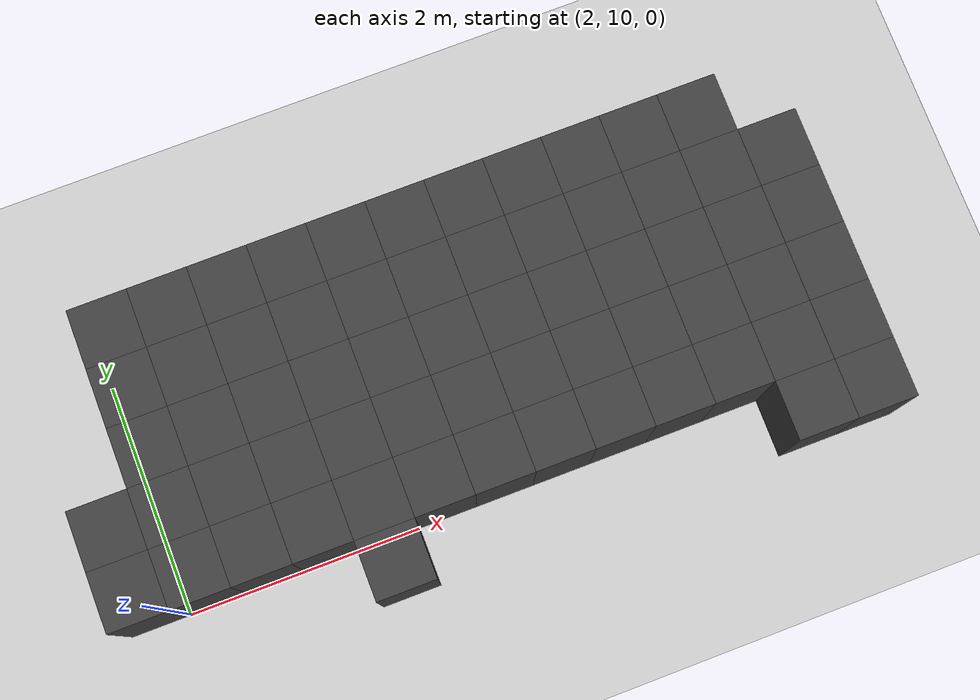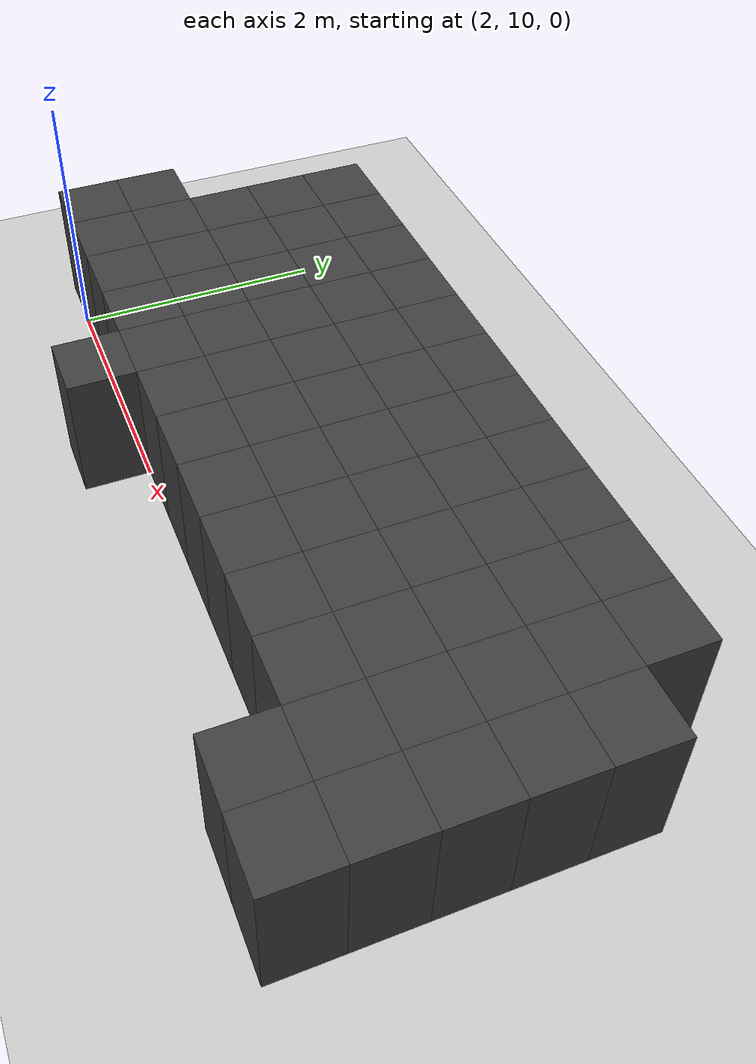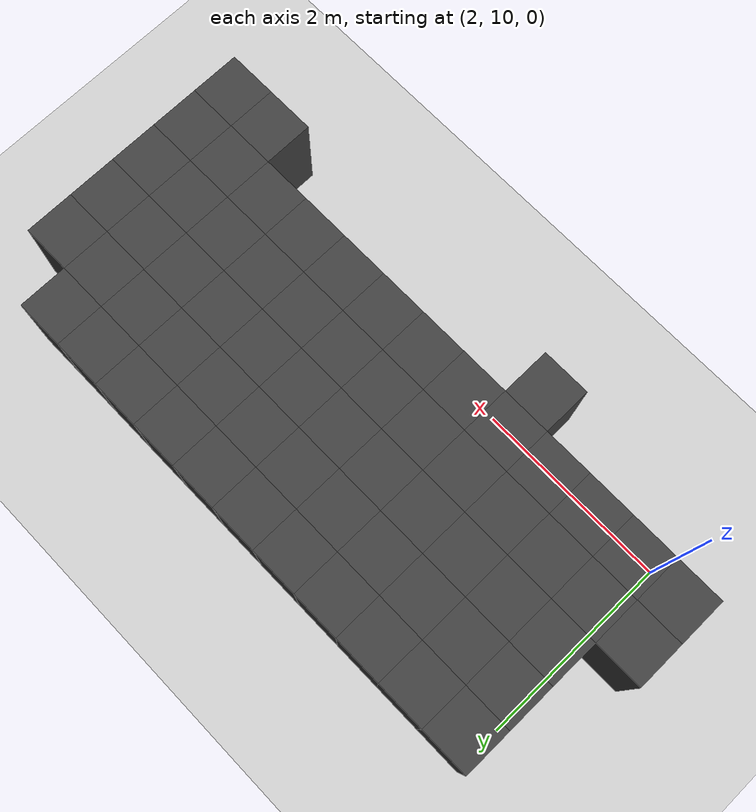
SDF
<sdf version="1.7">
 <world name="map_14735">
  <model name="ground_plane">
   <static>true</static>
   <link name="link">
    <collision name="collision">
     <geometry><plane><normal>0 0 1</normal><size>200 200</size></plane></geometry>
    </collision>
    <visual name="visual">
     <geometry><plane><normal>0 0 1</normal><size>200 200</size></plane></geometry>
     <material><ambient>0.8 0.8 0.8 1</ambient><diffuse>0.8 0.8 0.8 1</diffuse></material>
    </visual>
   </link>
  </model>
  <model name="maze_environment">
   <static>true</static>
   <link name="wall_29">
    <pose>2.250 12.250 0.500 0 0 0</pose>
    <collision name="col"><geometry><box><size>0.5 0.5 1.0</size></box></geometry></collision>
    <visual name="vis">
     <geometry><box><size>0.5 0.5 1.0</size></box></geometry>
     <material><ambient>0.15 0.15 0.15 1</ambient><diffuse>0.25 0.25 0.25 1</diffuse></material>
    </visual>
   </link>
   <link name="wall_30">
    <pose>2.750 12.250 0.500 0 0 0</pose>
    <collision name="col"><geometry><box><size>0.5 0.5 1.0</size></box></geometry></collision>
    <visual name="vis">
     <geometry><box><size>0.5 0.5 1.0</size></box></geometry>
     <material><ambient>0.15 0.15 0.15 1</ambient><diffuse>0.25 0.25 0.25 1</diffuse></material>
    </visual>
   </link>
   <link name="wall_31">
    <pose>3.250 12.250 0.500 0 0 0</pose>
    <collision name="col"><geometry><box><size>0.5 0.5 1.0</size></box></geometry></collision>
    <visual name="vis">
     <geometry><box><size>0.5 0.5 1.0</size></box></geometry>
     <material><ambient>0.15 0.15 0.15 1</ambient><diffuse>0.25 0.25 0.25 1</diffuse></material>
    </visual>
   </link>
   <link name="wall_32">
    <pose>3.750 12.250 0.500 0 0 0</pose>
    <collision name="col"><geometry><box><size>0.5 0.5 1.0</size></box></geometry></collision>
    <visual name="vis">
     <geometry><box><size>0.5 0.5 1.0</size></box></geometry>
     <material><ambient>0.15 0.15 0.15 1</ambient><diffuse>0.25 0.25 0.25 1</diffuse></material>
    </visual>
   </link>
   <link name="wall_33">
    <pose>4.250 12.250 0.500 0 0 0</pose>
    <collision name="col"><geometry><box><size>0.5 0.5 1.0</size></box></geometry></collision>
    <visual name="vis">
     <geometry><box><size>0.5 0.5 1.0</size></box></geometry>
     <material><ambient>0.15 0.15 0.15 1</ambient><diffuse>0.25 0.25 0.25 1</diffuse></material>
    </visual>
   </link>
   <link name="wall_34">
    <pose>4.750 12.250 0.500 0 0 0</pose>
    <collision name="col"><geometry><box><size>0.5 0.5 1.0</size></box></geometry></collision>
    <visual name="vis">
     <geometry><box><size>0.5 0.5 1.0</size></box></geometry>
     <material><ambient>0.15 0.15 0.15 1</ambient><diffuse>0.25 0.25 0.25 1</diffuse></material>
    </visual>
   </link>
   <link name="wall_35">
    <pose>5.250 12.250 0.500 0 0 0</pose>
    <collision name="col"><geometry><box><size>0.5 0.5 1.0</size></box></geometry></collision>
    <visual name="vis">
     <geometry><box><size>0.5 0.5 1.0</size></box></geometry>
     <material><ambient>0.15 0.15 0.15 1</ambient><diffuse>0.25 0.25 0.25 1</diffuse></material>
    </visual>
   </link>
   <link name="wall_36">
    <pose>5.750 12.250 0.500 0 0 0</pose>
    <collision name="col"><geometry><box><size>0.5 0.5 1.0</size></box></geometry></collision>
    <visual name="vis">
     <geometry><box><size>0.5 0.5 1.0</size></box></geometry>
     <material><ambient>0.15 0.15 0.15 1</ambient><diffuse>0.25 0.25 0.25 1</diffuse></material>
    </visual>
   </link>
   <link name="wall_37">
    <pose>6.250 12.250 0.500 0 0 0</pose>
    <collision name="col"><geometry><box><size>0.5 0.5 1.0</size></box></geometry></collision>
    <visual name="vis">
     <geometry><box><size>0.5 0.5 1.0</size></box></geometry>
     <material><ambient>0.15 0.15 0.15 1</ambient><diffuse>0.25 0.25 0.25 1</diffuse></material>
    </visual>
   </link>
   <link name="wall_38">
    <pose>6.750 12.250 0.500 0 0 0</pose>
    <collision name="col"><geometry><box><size>0.5 0.5 1.0</size></box></geometry></collision>
    <visual name="vis">
     <geometry><box><size>0.5 0.5 1.0</size></box></geometry>
     <material><ambient>0.15 0.15 0.15 1</ambient><diffuse>0.25 0.25 0.25 1</diffuse></material>
    </visual>
   </link>
   <link name="wall_39">
    <pose>7.250 12.250 0.500 0 0 0</pose>
    <collision name="col"><geometry><box><size>0.5 0.5 1.0</size></box></geometry></collision>
    <visual name="vis">
     <geometry><box><size>0.5 0.5 1.0</size></box></geometry>
     <material><ambient>0.15 0.15 0.15 1</ambient><diffuse>0.25 0.25 0.25 1</diffuse></material>
    </visual>
   </link>
   <link name="wall_71">
    <pose>2.250 11.750 0.500 0 0 0</pose>
    <collision name="col"><geometry><box><size>0.5 0.5 1.0</size></box></geometry></collision>
    <visual name="vis">
     <geometry><box><size>0.5 0.5 1.0</size></box></geometry>
     <material><ambient>0.15 0.15 0.15 1</ambient><diffuse>0.25 0.25 0.25 1</diffuse></material>
    </visual>
   </link>
   <link name="wall_72">
    <pose>2.750 11.750 0.500 0 0 0</pose>
    <collision name="col"><geometry><box><size>0.5 0.5 1.0</size></box></geometry></collision>
    <visual name="vis">
     <geometry><box><size>0.5 0.5 1.0</size></box></geometry>
     <material><ambient>0.15 0.15 0.15 1</ambient><diffuse>0.25 0.25 0.25 1</diffuse></material>
    </visual>
   </link>
   <link name="wall_73">
    <pose>3.250 11.750 0.500 0 0 0</pose>
    <collision name="col"><geometry><box><size>0.5 0.5 1.0</size></box></geometry></collision>
    <visual name="vis">
     <geometry><box><size>0.5 0.5 1.0</size></box></geometry>
     <material><ambient>0.15 0.15 0.15 1</ambient><diffuse>0.25 0.25 0.25 1</diffuse></material>
    </visual>
   </link>
   <link name="wall_74">
    <pose>3.750 11.750 0.500 0 0 0</pose>
    <collision name="col"><geometry><box><size>0.5 0.5 1.0</size></box></geometry></collision>
    <visual name="vis">
     <geometry><box><size>0.5 0.5 1.0</size></box></geometry>
     <material><ambient>0.15 0.15 0.15 1</ambient><diffuse>0.25 0.25 0.25 1</diffuse></material>
    </visual>
   </link>
   <link name="wall_75">
    <pose>4.250 11.750 0.500 0 0 0</pose>
    <collision name="col"><geometry><box><size>0.5 0.5 1.0</size></box></geometry></collision>
    <visual name="vis">
     <geometry><box><size>0.5 0.5 1.0</size></box></geometry>
     <material><ambient>0.15 0.15 0.15 1</ambient><diffuse>0.25 0.25 0.25 1</diffuse></material>
    </visual>
   </link>
   <link name="wall_76">
    <pose>4.750 11.750 0.500 0 0 0</pose>
    <collision name="col"><geometry><box><size>0.5 0.5 1.0</size></box></geometry></collision>
    <visual name="vis">
     <geometry><box><size>0.5 0.5 1.0</size></box></geometry>
     <material><ambient>0.15 0.15 0.15 1</ambient><diffuse>0.25 0.25 0.25 1</diffuse></material>
    </visual>
   </link>
   <link name="wall_77">
    <pose>5.250 11.750 0.500 0 0 0</pose>
    <collision name="col"><geometry><box><size>0.5 0.5 1.0</size></box></geometry></collision>
    <visual name="vis">
     <geometry><box><size>0.5 0.5 1.0</size></box></geometry>
     <material><ambient>0.15 0.15 0.15 1</ambient><diffuse>0.25 0.25 0.25 1</diffuse></material>
    </visual>
   </link>
   <link name="wall_78">
    <pose>5.750 11.750 0.500 0 0 0</pose>
    <collision name="col"><geometry><box><size>0.5 0.5 1.0</size></box></geometry></collision>
    <visual name="vis">
     <geometry><box><size>0.5 0.5 1.0</size></box></geometry>
     <material><ambient>0.15 0.15 0.15 1</ambient><diffuse>0.25 0.25 0.25 1</diffuse></material>
    </visual>
   </link>
   <link name="wall_79">
    <pose>6.250 11.750 0.500 0 0 0</pose>
    <collision name="col"><geometry><box><size>0.5 0.5 1.0</size></box></geometry></collision>
    <visual name="vis">
     <geometry><box><size>0.5 0.5 1.0</size></box></geometry>
     <material><ambient>0.15 0.15 0.15 1</ambient><diffuse>0.25 0.25 0.25 1</diffuse></material>
    </visual>
   </link>
   <link name="wall_80">
    <pose>6.750 11.750 0.500 0 0 0</pose>
    <collision name="col"><geometry><box><size>0.5 0.5 1.0</size></box></geometry></collision>
    <visual name="vis">
     <geometry><box><size>0.5 0.5 1.0</size></box></geometry>
     <material><ambient>0.15 0.15 0.15 1</ambient><diffuse>0.25 0.25 0.25 1</diffuse></material>
    </visual>
   </link>
   <link name="wall_81">
    <pose>7.250 11.750 0.500 0 0 0</pose>
    <collision name="col"><geometry><box><size>0.5 0.5 1.0</size></box></geometry></collision>
    <visual name="vis">
     <geometry><box><size>0.5 0.5 1.0</size></box></geometry>
     <material><ambient>0.15 0.15 0.15 1</ambient><diffuse>0.25 0.25 0.25 1</diffuse></material>
    </visual>
   </link>
   <link name="wall_82">
    <pose>7.750 11.750 0.500 0 0 0</pose>
    <collision name="col"><geometry><box><size>0.5 0.5 1.0</size></box></geometry></collision>
    <visual name="vis">
     <geometry><box><size>0.5 0.5 1.0</size></box></geometry>
     <material><ambient>0.15 0.15 0.15 1</ambient><diffuse>0.25 0.25 0.25 1</diffuse></material>
    </visual>
   </link>
   <link name="wall_113">
    <pose>2.250 11.250 0.500 0 0 0</pose>
    <collision name="col"><geometry><box><size>0.5 0.5 1.0</size></box></geometry></collision>
    <visual name="vis">
     <geometry><box><size>0.5 0.5 1.0</size></box></geometry>
     <material><ambient>0.15 0.15 0.15 1</ambient><diffuse>0.25 0.25 0.25 1</diffuse></material>
    </visual>
   </link>
   <link name="wall_114">
    <pose>2.750 11.250 0.500 0 0 0</pose>
    <collision name="col"><geometry><box><size>0.5 0.5 1.0</size></box></geometry></collision>
    <visual name="vis">
     <geometry><box><size>0.5 0.5 1.0</size></box></geometry>
     <material><ambient>0.15 0.15 0.15 1</ambient><diffuse>0.25 0.25 0.25 1</diffuse></material>
    </visual>
   </link>
   <link name="wall_115">
    <pose>3.250 11.250 0.500 0 0 0</pose>
    <collision name="col"><geometry><box><size>0.5 0.5 1.0</size></box></geometry></collision>
    <visual name="vis">
     <geometry><box><size>0.5 0.5 1.0</size></box></geometry>
     <material><ambient>0.15 0.15 0.15 1</ambient><diffuse>0.25 0.25 0.25 1</diffuse></material>
    </visual>
   </link>
   <link name="wall_116">
    <pose>3.750 11.250 0.500 0 0 0</pose>
    <collision name="col"><geometry><box><size>0.5 0.5 1.0</size></box></geometry></collision>
    <visual name="vis">
     <geometry><box><size>0.5 0.5 1.0</size></box></geometry>
     <material><ambient>0.15 0.15 0.15 1</ambient><diffuse>0.25 0.25 0.25 1</diffuse></material>
    </visual>
   </link>
   <link name="wall_117">
    <pose>4.250 11.250 0.500 0 0 0</pose>
    <collision name="col"><geometry><box><size>0.5 0.5 1.0</size></box></geometry></collision>
    <visual name="vis">
     <geometry><box><size>0.5 0.5 1.0</size></box></geometry>
     <material><ambient>0.15 0.15 0.15 1</ambient><diffuse>0.25 0.25 0.25 1</diffuse></material>
    </visual>
   </link>
   <link name="wall_118">
    <pose>4.750 11.250 0.500 0 0 0</pose>
    <collision name="col"><geometry><box><size>0.5 0.5 1.0</size></box></geometry></collision>
    <visual name="vis">
     <geometry><box><size>0.5 0.5 1.0</size></box></geometry>
     <material><ambient>0.15 0.15 0.15 1</ambient><diffuse>0.25 0.25 0.25 1</diffuse></material>
    </visual>
   </link>
   <link name="wall_119">
    <pose>5.250 11.250 0.500 0 0 0</pose>
    <collision name="col"><geometry><box><size>0.5 0.5 1.0</size></box></geometry></collision>
    <visual name="vis">
     <geometry><box><size>0.5 0.5 1.0</size></box></geometry>
     <material><ambient>0.15 0.15 0.15 1</ambient><diffuse>0.25 0.25 0.25 1</diffuse></material>
    </visual>
   </link>
   <link name="wall_120">
    <pose>5.750 11.250 0.500 0 0 0</pose>
    <collision name="col"><geometry><box><size>0.5 0.5 1.0</size></box></geometry></collision>
    <visual name="vis">
     <geometry><box><size>0.5 0.5 1.0</size></box></geometry>
     <material><ambient>0.15 0.15 0.15 1</ambient><diffuse>0.25 0.25 0.25 1</diffuse></material>
    </visual>
   </link>
   <link name="wall_121">
    <pose>6.250 11.250 0.500 0 0 0</pose>
    <collision name="col"><geometry><box><size>0.5 0.5 1.0</size></box></geometry></collision>
    <visual name="vis">
     <geometry><box><size>0.5 0.5 1.0</size></box></geometry>
     <material><ambient>0.15 0.15 0.15 1</ambient><diffuse>0.25 0.25 0.25 1</diffuse></material>
    </visual>
   </link>
   <link name="wall_122">
    <pose>6.750 11.250 0.500 0 0 0</pose>
    <collision name="col"><geometry><box><size>0.5 0.5 1.0</size></box></geometry></collision>
    <visual name="vis">
     <geometry><box><size>0.5 0.5 1.0</size></box></geometry>
     <material><ambient>0.15 0.15 0.15 1</ambient><diffuse>0.25 0.25 0.25 1</diffuse></material>
    </visual>
   </link>
   <link name="wall_123">
    <pose>7.250 11.250 0.500 0 0 0</pose>
    <collision name="col"><geometry><box><size>0.5 0.5 1.0</size></box></geometry></collision>
    <visual name="vis">
     <geometry><box><size>0.5 0.5 1.0</size></box></geometry>
     <material><ambient>0.15 0.15 0.15 1</ambient><diffuse>0.25 0.25 0.25 1</diffuse></material>
    </visual>
   </link>
   <link name="wall_124">
    <pose>7.750 11.250 0.500 0 0 0</pose>
    <collision name="col"><geometry><box><size>0.5 0.5 1.0</size></box></geometry></collision>
    <visual name="vis">
     <geometry><box><size>0.5 0.5 1.0</size></box></geometry>
     <material><ambient>0.15 0.15 0.15 1</ambient><diffuse>0.25 0.25 0.25 1</diffuse></material>
    </visual>
   </link>
   <link name="wall_146">
    <pose>1.750 10.750 0.500 0 0 0</pose>
    <collision name="col"><geometry><box><size>0.5 0.5 1.0</size></box></geometry></collision>
    <visual name="vis">
     <geometry><box><size>0.5 0.5 1.0</size></box></geometry>
     <material><ambient>0.15 0.15 0.15 1</ambient><diffuse>0.25 0.25 0.25 1</diffuse></material>
    </visual>
   </link>
   <link name="wall_147">
    <pose>2.250 10.750 0.500 0 0 0</pose>
    <collision name="col"><geometry><box><size>0.5 0.5 1.0</size></box></geometry></collision>
    <visual name="vis">
     <geometry><box><size>0.5 0.5 1.0</size></box></geometry>
     <material><ambient>0.15 0.15 0.15 1</ambient><diffuse>0.25 0.25 0.25 1</diffuse></material>
    </visual>
   </link>
   <link name="wall_148">
    <pose>2.750 10.750 0.500 0 0 0</pose>
    <collision name="col"><geometry><box><size>0.5 0.5 1.0</size></box></geometry></collision>
    <visual name="vis">
     <geometry><box><size>0.5 0.5 1.0</size></box></geometry>
     <material><ambient>0.15 0.15 0.15 1</ambient><diffuse>0.25 0.25 0.25 1</diffuse></material>
    </visual>
   </link>
   <link name="wall_149">
    <pose>3.250 10.750 0.500 0 0 0</pose>
    <collision name="col"><geometry><box><size>0.5 0.5 1.0</size></box></geometry></collision>
    <visual name="vis">
     <geometry><box><size>0.5 0.5 1.0</size></box></geometry>
     <material><ambient>0.15 0.15 0.15 1</ambient><diffuse>0.25 0.25 0.25 1</diffuse></material>
    </visual>
   </link>
   <link name="wall_150">
    <pose>3.750 10.750 0.500 0 0 0</pose>
    <collision name="col"><geometry><box><size>0.5 0.5 1.0</size></box></geometry></collision>
    <visual name="vis">
     <geometry><box><size>0.5 0.5 1.0</size></box></geometry>
     <material><ambient>0.15 0.15 0.15 1</ambient><diffuse>0.25 0.25 0.25 1</diffuse></material>
    </visual>
   </link>
   <link name="wall_151">
    <pose>4.250 10.750 0.500 0 0 0</pose>
    <collision name="col"><geometry><box><size>0.5 0.5 1.0</size></box></geometry></collision>
    <visual name="vis">
     <geometry><box><size>0.5 0.5 1.0</size></box></geometry>
     <material><ambient>0.15 0.15 0.15 1</ambient><diffuse>0.25 0.25 0.25 1</diffuse></material>
    </visual>
   </link>
   <link name="wall_152">
    <pose>4.750 10.750 0.500 0 0 0</pose>
    <collision name="col"><geometry><box><size>0.5 0.5 1.0</size></box></geometry></collision>
    <visual name="vis">
     <geometry><box><size>0.5 0.5 1.0</size></box></geometry>
     <material><ambient>0.15 0.15 0.15 1</ambient><diffuse>0.25 0.25 0.25 1</diffuse></material>
    </visual>
   </link>
   <link name="wall_153">
    <pose>5.250 10.750 0.500 0 0 0</pose>
    <collision name="col"><geometry><box><size>0.5 0.5 1.0</size></box></geometry></collision>
    <visual name="vis">
     <geometry><box><size>0.5 0.5 1.0</size></box></geometry>
     <material><ambient>0.15 0.15 0.15 1</ambient><diffuse>0.25 0.25 0.25 1</diffuse></material>
    </visual>
   </link>
   <link name="wall_154">
    <pose>5.750 10.750 0.500 0 0 0</pose>
    <collision name="col"><geometry><box><size>0.5 0.5 1.0</size></box></geometry></collision>
    <visual name="vis">
     <geometry><box><size>0.5 0.5 1.0</size></box></geometry>
     <material><ambient>0.15 0.15 0.15 1</ambient><diffuse>0.25 0.25 0.25 1</diffuse></material>
    </visual>
   </link>
   <link name="wall_155">
    <pose>6.250 10.750 0.500 0 0 0</pose>
    <collision name="col"><geometry><box><size>0.5 0.5 1.0</size></box></geometry></collision>
    <visual name="vis">
     <geometry><box><size>0.5 0.5 1.0</size></box></geometry>
     <material><ambient>0.15 0.15 0.15 1</ambient><diffuse>0.25 0.25 0.25 1</diffuse></material>
    </visual>
   </link>
   <link name="wall_156">
    <pose>6.750 10.750 0.500 0 0 0</pose>
    <collision name="col"><geometry><box><size>0.5 0.5 1.0</size></box></geometry></collision>
    <visual name="vis">
     <geometry><box><size>0.5 0.5 1.0</size></box></geometry>
     <material><ambient>0.15 0.15 0.15 1</ambient><diffuse>0.25 0.25 0.25 1</diffuse></material>
    </visual>
   </link>
   <link name="wall_157">
    <pose>7.250 10.750 0.500 0 0 0</pose>
    <collision name="col"><geometry><box><size>0.5 0.5 1.0</size></box></geometry></collision>
    <visual name="vis">
     <geometry><box><size>0.5 0.5 1.0</size></box></geometry>
     <material><ambient>0.15 0.15 0.15 1</ambient><diffuse>0.25 0.25 0.25 1</diffuse></material>
    </visual>
   </link>
   <link name="wall_158">
    <pose>7.750 10.750 0.500 0 0 0</pose>
    <collision name="col"><geometry><box><size>0.5 0.5 1.0</size></box></geometry></collision>
    <visual name="vis">
     <geometry><box><size>0.5 0.5 1.0</size></box></geometry>
     <material><ambient>0.15 0.15 0.15 1</ambient><diffuse>0.25 0.25 0.25 1</diffuse></material>
    </visual>
   </link>
   <link name="wall_175">
    <pose>1.750 10.250 0.500 0 0 0</pose>
    <collision name="col"><geometry><box><size>0.5 0.5 1.0</size></box></geometry></collision>
    <visual name="vis">
     <geometry><box><size>0.5 0.5 1.0</size></box></geometry>
     <material><ambient>0.15 0.15 0.15 1</ambient><diffuse>0.25 0.25 0.25 1</diffuse></material>
    </visual>
   </link>
   <link name="wall_176">
    <pose>2.250 10.250 0.500 0 0 0</pose>
    <collision name="col"><geometry><box><size>0.5 0.5 1.0</size></box></geometry></collision>
    <visual name="vis">
     <geometry><box><size>0.5 0.5 1.0</size></box></geometry>
     <material><ambient>0.15 0.15 0.15 1</ambient><diffuse>0.25 0.25 0.25 1</diffuse></material>
    </visual>
   </link>
   <link name="wall_177">
    <pose>2.750 10.250 0.500 0 0 0</pose>
    <collision name="col"><geometry><box><size>0.5 0.5 1.0</size></box></geometry></collision>
    <visual name="vis">
     <geometry><box><size>0.5 0.5 1.0</size></box></geometry>
     <material><ambient>0.15 0.15 0.15 1</ambient><diffuse>0.25 0.25 0.25 1</diffuse></material>
    </visual>
   </link>
   <link name="wall_178">
    <pose>3.250 10.250 0.500 0 0 0</pose>
    <collision name="col"><geometry><box><size>0.5 0.5 1.0</size></box></geometry></collision>
    <visual name="vis">
     <geometry><box><size>0.5 0.5 1.0</size></box></geometry>
     <material><ambient>0.15 0.15 0.15 1</ambient><diffuse>0.25 0.25 0.25 1</diffuse></material>
    </visual>
   </link>
   <link name="wall_179">
    <pose>3.750 10.250 0.500 0 0 0</pose>
    <collision name="col"><geometry><box><size>0.5 0.5 1.0</size></box></geometry></collision>
    <visual name="vis">
     <geometry><box><size>0.5 0.5 1.0</size></box></geometry>
     <material><ambient>0.15 0.15 0.15 1</ambient><diffuse>0.25 0.25 0.25 1</diffuse></material>
    </visual>
   </link>
   <link name="wall_180">
    <pose>4.250 10.250 0.500 0 0 0</pose>
    <collision name="col"><geometry><box><size>0.5 0.5 1.0</size></box></geometry></collision>
    <visual name="vis">
     <geometry><box><size>0.5 0.5 1.0</size></box></geometry>
     <material><ambient>0.15 0.15 0.15 1</ambient><diffuse>0.25 0.25 0.25 1</diffuse></material>
    </visual>
   </link>
   <link name="wall_181">
    <pose>4.750 10.250 0.500 0 0 0</pose>
    <collision name="col"><geometry><box><size>0.5 0.5 1.0</size></box></geometry></collision>
    <visual name="vis">
     <geometry><box><size>0.5 0.5 1.0</size></box></geometry>
     <material><ambient>0.15 0.15 0.15 1</ambient><diffuse>0.25 0.25 0.25 1</diffuse></material>
    </visual>
   </link>
   <link name="wall_182">
    <pose>5.250 10.250 0.500 0 0 0</pose>
    <collision name="col"><geometry><box><size>0.5 0.5 1.0</size></box></geometry></collision>
    <visual name="vis">
     <geometry><box><size>0.5 0.5 1.0</size></box></geometry>
     <material><ambient>0.15 0.15 0.15 1</ambient><diffuse>0.25 0.25 0.25 1</diffuse></material>
    </visual>
   </link>
   <link name="wall_183">
    <pose>5.750 10.250 0.500 0 0 0</pose>
    <collision name="col"><geometry><box><size>0.5 0.5 1.0</size></box></geometry></collision>
    <visual name="vis">
     <geometry><box><size>0.5 0.5 1.0</size></box></geometry>
     <material><ambient>0.15 0.15 0.15 1</ambient><diffuse>0.25 0.25 0.25 1</diffuse></material>
    </visual>
   </link>
   <link name="wall_184">
    <pose>6.250 10.250 0.500 0 0 0</pose>
    <collision name="col"><geometry><box><size>0.5 0.5 1.0</size></box></geometry></collision>
    <visual name="vis">
     <geometry><box><size>0.5 0.5 1.0</size></box></geometry>
     <material><ambient>0.15 0.15 0.15 1</ambient><diffuse>0.25 0.25 0.25 1</diffuse></material>
    </visual>
   </link>
   <link name="wall_185">
    <pose>6.750 10.250 0.500 0 0 0</pose>
    <collision name="col"><geometry><box><size>0.5 0.5 1.0</size></box></geometry></collision>
    <visual name="vis">
     <geometry><box><size>0.5 0.5 1.0</size></box></geometry>
     <material><ambient>0.15 0.15 0.15 1</ambient><diffuse>0.25 0.25 0.25 1</diffuse></material>
    </visual>
   </link>
   <link name="wall_186">
    <pose>7.250 10.250 0.500 0 0 0</pose>
    <collision name="col"><geometry><box><size>0.5 0.5 1.0</size></box></geometry></collision>
    <visual name="vis">
     <geometry><box><size>0.5 0.5 1.0</size></box></geometry>
     <material><ambient>0.15 0.15 0.15 1</ambient><diffuse>0.25 0.25 0.25 1</diffuse></material>
    </visual>
   </link>
   <link name="wall_187">
    <pose>7.750 10.250 0.500 0 0 0</pose>
    <collision name="col"><geometry><box><size>0.5 0.5 1.0</size></box></geometry></collision>
    <visual name="vis">
     <geometry><box><size>0.5 0.5 1.0</size></box></geometry>
     <material><ambient>0.15 0.15 0.15 1</ambient><diffuse>0.25 0.25 0.25 1</diffuse></material>
    </visual>
   </link>
   <link name="wall_207">
    <pose>3.750 9.750 0.500 0 0 0</pose>
    <collision name="col"><geometry><box><size>0.5 0.5 1.0</size></box></geometry></collision>
    <visual name="vis">
     <geometry><box><size>0.5 0.5 1.0</size></box></geometry>
     <material><ambient>0.15 0.15 0.15 1</ambient><diffuse>0.25 0.25 0.25 1</diffuse></material>
    </visual>
   </link>
   <link name="wall_208">
    <pose>7.250 9.750 0.500 0 0 0</pose>
    <collision name="col"><geometry><box><size>0.5 0.5 1.0</size></box></geometry></collision>
    <visual name="vis">
     <geometry><box><size>0.5 0.5 1.0</size></box></geometry>
     <material><ambient>0.15 0.15 0.15 1</ambient><diffuse>0.25 0.25 0.25 1</diffuse></material>
    </visual>
   </link>
   <link name="wall_209">
    <pose>7.750 9.750 0.500 0 0 0</pose>
    <collision name="col"><geometry><box><size>0.5 0.5 1.0</size></box></geometry></collision>
    <visual name="vis">
     <geometry><box><size>0.5 0.5 1.0</size></box></geometry>
     <material><ambient>0.15 0.15 0.15 1</ambient><diffuse>0.25 0.25 0.25 1</diffuse></material>
    </visual>
   </link>
  </model>
 </world>
</sdf>
